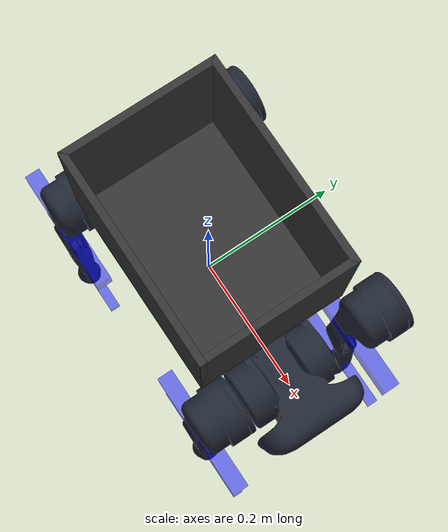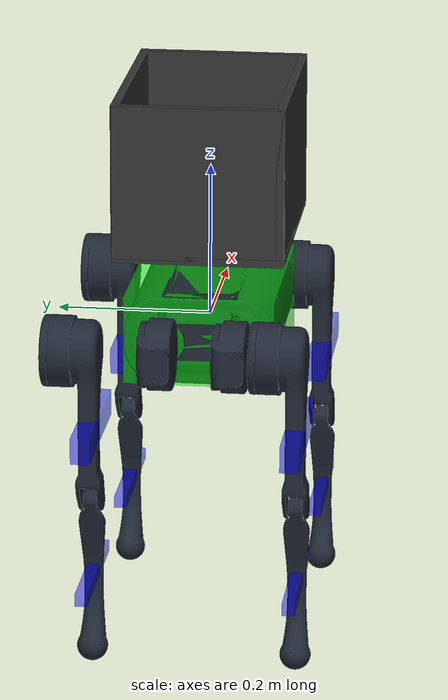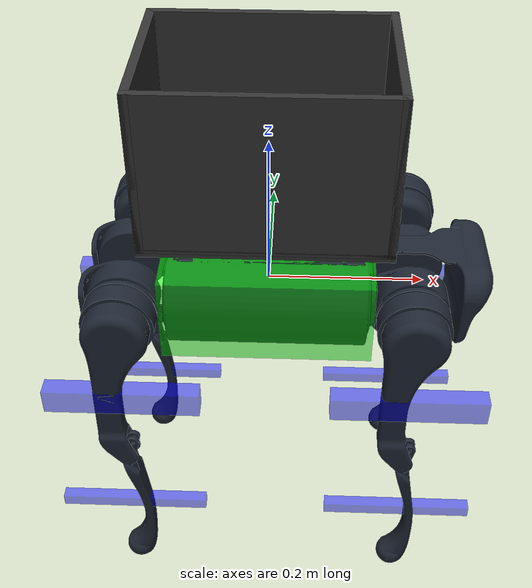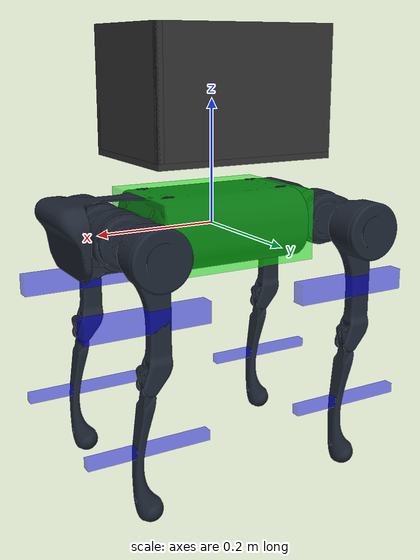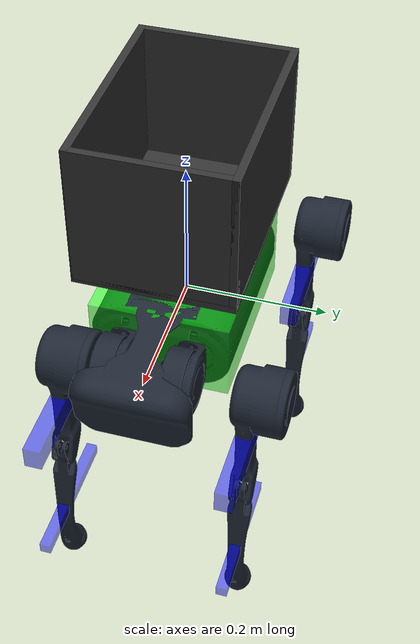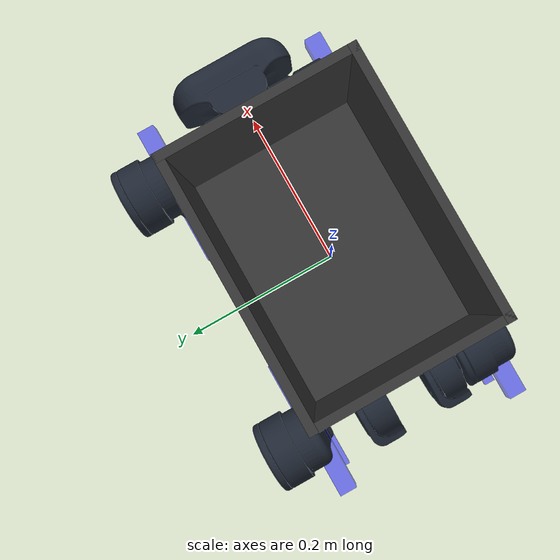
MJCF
<?xml version="1.0" ?>
<mujoco model="a1_description">
    <asset>
        <material name="black" rgba="0.0 0.0 0.0 1.0"/>
        <material name="blue" rgba="0.0 0.0 0.8 1.0"/>
        <material name="green" rgba="0.0 0.8 0.0 1.0"/>
        <material name="grey" rgba="0.2 0.2 0.2 1.0"/>
        <material name="silver" rgba="0.913725490196 0.913725490196 0.847058823529 1.0"/>
        <material name="orange" rgba="0.12 0.15 0.2 1.0"/>
        <material name="brown" rgba="0.870588235294 0.811764705882 0.764705882353 1.0"/>
        <material name="red" rgba="0.8 0.0 0.0 1.0"/>
        <material name="white" rgba="1.0 1.0 1.0 1.0"/>
        <mesh name="trunk" file="../meshes/trunk.dae" scale="1 1 1"/>
        <mesh name="hip" file="../meshes/hip.dae" scale="1 1 1"/>
        <mesh name="thigh" file="../meshes/thigh_mirror.dae" scale="1 1 1"/>
        <mesh name="calf" file="../meshes/calf.dae" scale="1 1 1"/>
    </asset>
    <worldbody>
        <body name="base" pos="0 0 0">
            <geom type="box" size="0.0005 0.0005 0.0005" rgba="1 0 0 1"/>
            <joint name="floating_base" type="free"/>
            <body name="trunk" pos="0 0 0">
                <geom type="mesh" mesh="trunk" material="orange"/>
                <geom type="box" size="0.1335 0.097 0.057" pos="0 0 0" rgba="0 1 0 0.5"/>
                <inertial pos="0.012731 0.002186 0.000515" mass="4.713" diaginertia="0.01683993 0.056579028 0.064713601"/>
                <joint name="imu_joint" type="free" pos="0 0 0"/>
                <body name="imu_link" pos="0 0 0">
                    <geom type="box" size="0.0005 0.0005 0.0005" material="red"/>
                    <inertial mass="0.001" diaginertia="0.0001 0.0001 0.0001"/>
                </body>
                <!-- Front Right Leg (FR) -->
                <body name="FR_hip" pos="0.183 -0.047 0">
                    <joint name="FR_hip_joint" type="hinge" axis="1 0 0" pos="0 0 0" range="-0.802851455917 0.802851455917" limited="true"/>
                    <geom type="mesh" mesh="hip" material="orange"/>
                    <inertial pos="-0.003311 -0.000635 3.1e-05" mass="0.696" diaginertia="0.000469246 0.00080749 0.000552929"/>
                    <body name="FR_thigh" pos="0 -0.08505 0">
                        <joint name="FR_thigh_joint" type="hinge" axis="0 1 0" pos="0 0 0" range="-1.0471975512 4.18879020479" limited="true"/>
                        <geom type="mesh" mesh="thigh" material="orange"/>
                        <geom type="box" size="0.1 0.01225 0.017" pos="0 0 -0.1" rgba="0 0 1 0.5"/>
                        <inertial pos="-0.003237 0.022327 -0.027326" mass="1.013" diaginertia="0.005529065 0.005139339 0.001367788"/>
                        <body name="FR_calf" pos="0 0 -0.2">
                            <joint name="FR_calf_joint" type="hinge" axis="0 1 0" pos="0 0 0" range="-2.69653369433 -0.916297857297" limited="true"/>
                            <geom type="mesh" mesh="calf" material="orange"/>
                            <geom type="box" size="0.1 0.008 0.008" pos="0 0 -0.1" rgba="0 0 1 0.5"/>
                            <inertial pos="0.006435 0.0 -0.107388" mass="0.166" diaginertia="0.002997972 0.003014022 3.2426e-05"/>
                            <body name="FR_foot" pos="0 0 -0.2">
                                <geom type="sphere" size="0.01" material="orange"/>
                                <geom type="sphere" size="0.02" pos="0 0 0" rgba="0 0 1 0.5"/>
                                <inertial mass="0.06" diaginertia="9.6e-06 9.6e-06 9.6e-06"/>
                            </body>
                        </body>
                    </body>
                </body>
                <!-- Front Left Leg (FL) -->
                <body name="FL_hip" pos="0.183 0.047 0">
                    <joint name="FL_hip_joint" type="hinge" axis="1 0 0" pos="0 0 0" range="-0.802851455917 0.802851455917" limited="true"/>
                    <geom type="mesh" mesh="hip" material="orange"/>
                    <inertial pos="-0.003311 0.000635 3.1e-05" mass="0.696" diaginertia="0.000469246 0.00080749 0.000552929"/>
                    <body name="FL_thigh" pos="0 0.08505 0">
                        <joint name="FL_thigh_joint" type="hinge" axis="0 1 0" pos="0 0 0" range="-1.0471975512 4.18879020479" limited="true"/>
                        <geom type="mesh" mesh="thigh" material="orange"/>
                        <geom type="box" size="0.1 0.01225 0.017" pos="0 0 -0.1" rgba="0 0 1 0.5"/>
                        <inertial pos="-0.003237 -0.022327 -0.027326" mass="1.013" diaginertia="0.005529065 0.005139339 0.001367788"/>
                        <body name="FL_calf" pos="0 0 -0.2">
                            <joint name="FL_calf_joint" type="hinge" axis="0 1 0" pos="0 0 0" range="-2.69653369433 -0.916297857297" limited="true"/>
                            <geom type="mesh" mesh="calf" material="orange"/>
                            <geom type="box" size="0.1 0.008 0.008" pos="0 0 -0.1" rgba="0 0 1 0.5"/>
                            <inertial pos="0.006435 0.0 -0.107388" mass="0.166" diaginertia="0.002997972 0.003014022 3.2426e-05"/>
                            <body name="FL_foot" pos="0 0 -0.2">
                                <geom type="sphere" size="0.01" material="orange"/>
                                <geom type="sphere" size="0.02" pos="0 0 0" rgba="0 0 1 0.5"/>
                                <inertial mass="0.06" diaginertia="9.6e-06 9.6e-06 9.6e-06"/>
                            </body>
                        </body>
                    </body>
                </body>
                <!-- Rear Right Leg (RR) -->
                <body name="RR_hip" pos="-0.183 -0.047 0">
                    <joint name="RR_hip_joint" type="hinge" axis="1 0 0" pos="0 0 0" range="-0.802851455917 0.802851455917" limited="true"/>
                    <geom type="mesh" mesh="hip" material="orange"/>
                    <inertial pos="0.003311 -0.000635 3.1e-05" mass="0.696" diaginertia="0.000469246 0.00080749 0.000552929"/>
                    <body name="RR_thigh" pos="0 -0.08505 0">
                        <joint name="RR_thigh_joint" type="hinge" axis="0 1 0" pos="0 0 0" range="-1.0471975512 4.18879020479" limited="true"/>
                        <geom type="mesh" mesh="thigh" material="orange"/>
                        <geom type="box" size="0.1 0.01225 0.017" pos="0 0 -0.1" rgba="0 0 1 0.5"/>
                        <inertial pos="-0.003237 0.022327 -0.027326" mass="1.013" diaginertia="0.005529065 0.005139339 0.001367788"/>
                        <body name="RR_calf" pos="0 0 -0.2">
                            <joint name="RR_calf_joint" type="hinge" axis="0 1 0" pos="0 0 0" range="-2.69653369433 -0.916297857297" limited="true"/>
                            <geom type="mesh" mesh="calf" material="orange"/>
                            <geom type="box" size="0.1 0.008 0.008" pos="0 0 -0.1" rgba="0 0 1 0.5"/>
                            <inertial pos="0.006435 0.0 -0.107388" mass="0.166" diaginertia="0.002997972 0.003014022 3.2426e-05"/>
                            <body name="RR_foot" pos="0 0 -0.2">
                                <geom type="sphere" size="0.01" material="orange"/>
                                <geom type="sphere" size="0.02" pos="0 0 0" rgba="0 0 1 0.5"/>
                                <inertial mass="0.06" diaginertia="9.6e-06 9.6e-06 9.6e-06"/>
                            </body>
                        </body>
                    </body>
                </body>
                <!-- Rear Left Leg (RL) -->
                <body name="RL_hip" pos="-0.183 0.047 0">
                    <joint name="RL_hip_joint" type="hinge" axis="1 0 0" pos="0 0 0" range="-0.802851455917 0.802851455917" limited="true"/>
                    <geom type="mesh" mesh="hip" material="orange"/>
                    <inertial pos="0.003311 0.000635 3.1e-05" mass="0.696" diaginertia="0.000469246 0.00080749 0.000552929"/>
                    <body name="RL_thigh" pos="0 0.08505 0">
                        <joint name="RL_thigh_joint" type="hinge" axis="0 1 0" pos="0 0 0" range="-1.0471975512 4.18879020479" limited="true"/>
                        <geom type="mesh" mesh="thigh" material="orange"/>
                        <geom type="box" size="0.1 0.01225 0.017" pos="0 0 -0.1" rgba="0 0 1 0.5"/>
                        <inertial pos="-0.003237 -0.022327 -0.027326" mass="1.013" diaginertia="0.005529065 0.005139339 0.001367788"/>
                        <body name="RL_calf" pos="0 0 -0.2">
                            <joint name="RL_calf_joint" type="hinge" axis="0 1 0" pos="0 0 0" range="-2.69653369433 -0.916297857297" limited="true"/>
                            <geom type="mesh" mesh="calf" material="orange"/>
                            <geom type="box" size="0.1 0.008 0.008" pos="0 0 -0.1" rgba="0 0 1 0.5"/>
                            <inertial pos="0.006435 0.0 -0.107388" mass="0.166" diaginertia="0.002997972 0.003014022 3.2426e-05"/>
                            <body name="RL_foot" pos="0 0 -0.2">
                                <geom type="sphere" size="0.01" material="orange"/>
                                <geom type="sphere" size="0.02" pos="0 0 0" rgba="0 0 1 0.5"/>
                                <inertial mass="0.06" diaginertia="9.6e-06 9.6e-06 9.6e-06"/>
                            </body>
                        </body>
                    </body>
                </body>
                <!-- Back Box -->
                <body name="back_box" pos="0 0 0.114">
                    <geom type="box" size="0.15 0.11 0.005" pos="0 0 0" material="grey"/>
                    <geom type="box" size="0.15 0.005 0.1" pos="0 0.105 0.1" material="grey"/>
                    <geom type="box" size="0.15 0.005 0.1" pos="0 -0.105 0.1" material="grey"/>
                    <geom type="box" size="0.005 0.11 0.1" pos="0.145 0 0.1" material="grey"/>
                    <geom type="box" size="0.005 0.11 0.1" pos="-0.145 0 0.1" material="grey"/>
                    <inertial pos="0 0 0" mass="0.5" diaginertia="0.01 0.01 0.01"/>
                </body>
            </body>
        </body>
    </worldbody>
</mujoco>
